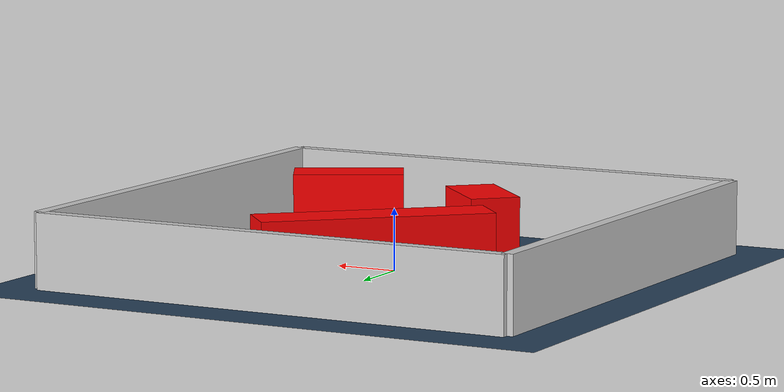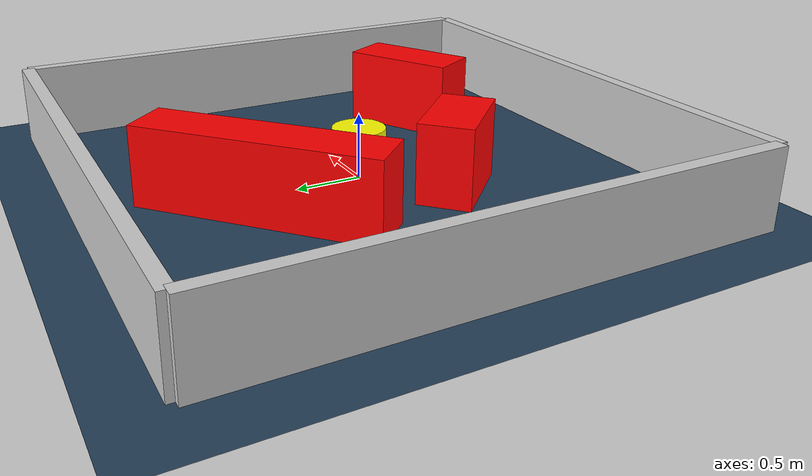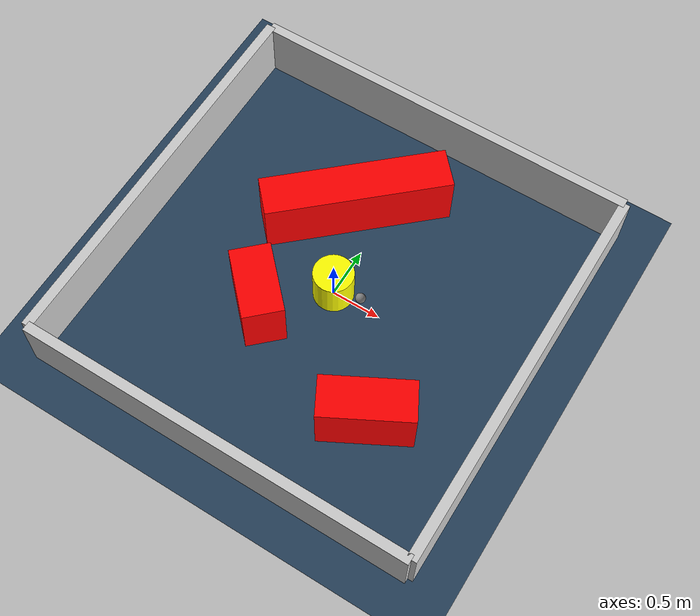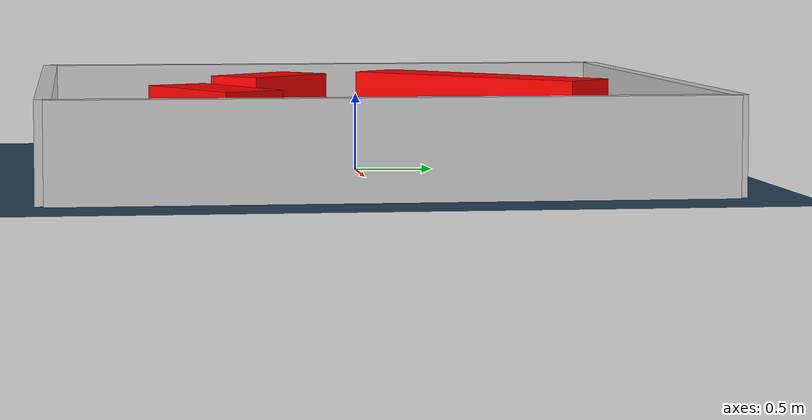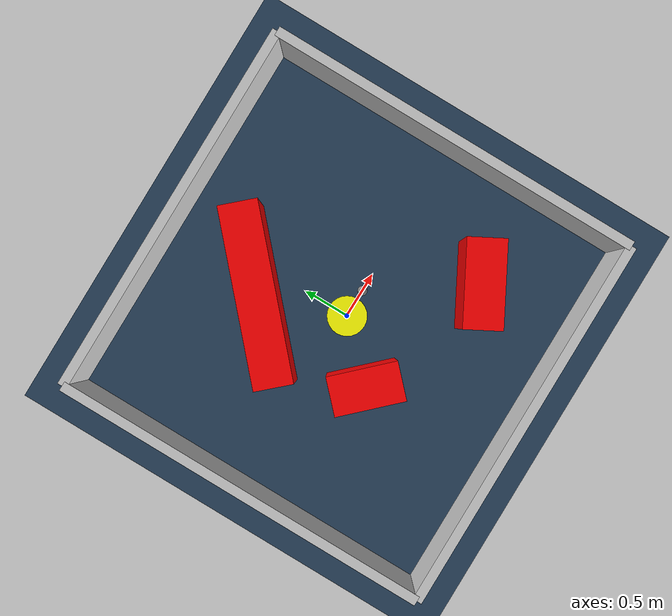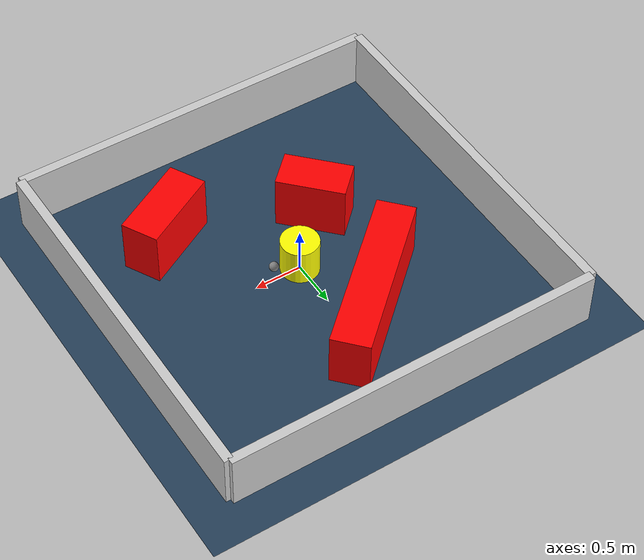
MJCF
<?xml version="1.0" ?>
<mujoco model="generated_environment">
  <option timestep="0.01" integrator="RK4" cone="elliptic"/>
  <default>
    <geom density="1"/>
  </default>
  <asset>
    <texture builtin="gradient" height="3072" rgb1="0.3 0.5 0.7" rgb2="0 0 0" type="skybox" width="512"/>
    <texture builtin="checker" height="300" mark="edge" markrgb="0.8 0.8 0.8" name="groundplane" rgb1="0.2 0.3 0.4" rgb2="0.1 0.2 0.3" type="2d" width="300"/>
    <material name="groundplane" reflectance="0.2" texrepeat="5 5" texture="groundplane" texuniform="true"/>
    <material name="robot" rgba="0.0 1.0 0.0 1"/>
  </asset>
  <worldbody>
    <light dir="0 0 -1" directional="true" pos="0 0 1.5"/>
    <geom condim="4" friction="1.0 0.005 0.001" material="groundplane" name="floor" size="0 0 0.05" type="plane"/>
    <body name="walls">
      <geom name="wall_1" condim="4" pos="-2.0 0.0 0.3" rgba="0.800000011920929 0.800000011920929 0.800000011920929 1.0" size="0.05 2.0 0.3" type="box"/>
      <geom name="wall_2" condim="4" pos="2.0 0.0 0.3" rgba="0.800000011920929 0.800000011920929 0.800000011920929 1.0" size="0.05 2.0 0.3" type="box"/>
      <geom name="wall_3" condim="4" pos="0.0 -2.0 0.3" rgba="0.800000011920929 0.800000011920929 0.800000011920929 1.0" size="2.0 0.05 0.3" type="box"/>
      <geom name="wall_4" condim="4" pos="0.0 2.0 0.3" rgba="0.800000011920929 0.800000011920929 0.800000011920929 1.0" size="2.0 0.05 0.3" type="box"/>
    </body>
    <body name="robot">
      <joint name="joint_x" type="slide" pos="0 0 0" axis="1 0 0"/>
      <joint name="joint_y" type="slide" pos="0 0 0" axis="0 1 0"/>
      <geom name="robot" type="sphere" pos="0.3 0.0 0.2" size="0.05" mass="5." friction="1.0 0.005 0.0001" condim="4" rgba="0.5 0.5 0.5 1.0"/>
      <site name="sensor_ball"/>
    </body>
    <body name="obstacle_movable_1">
      <geom name="obstacle_movable_1" condim="4" pos="0.0 0.0 0.2" euler="0 0 0.0" friction="1.0 0.005 0.001" rgba="1.0 1.0 0.0 1.0" size="0.2 0.2 0.0" type="cylinder" mass="0.1"/>
      <joint type="free"/>
    </body>
    <body name="obstacle_2_static">
      <geom name="obstacle_2_static" condim="4" pos="0.956265218967238 -0.978885799308076 0.3" euler="0 0 28.33542936209785" friction="1.0 0.005 0.001" rgba="1 0 0 1" size="0.4485686478617408 0.2 0.3" type="box"/>
    </body>
    <body name="obstacle_3_static">
      <geom name="obstacle_3_static" condim="4" pos="-0.2847721464526124 0.8624468731951451 0.3" euler="0 0 222.25507347484398" friction="1.0 0.005 0.001" rgba="1 0 0 1" size="0.9148968563863644 0.2 0.3" type="box"/>
    </body>
    <body name="obstacle_4_static">
      <geom name="obstacle_4_static" condim="4" pos="-0.5058451439930087 -0.5227296443672962 0.3" euler="0 0 313.84308965095573" friction="1.0 0.005 0.001" rgba="1 0 0 1" size="0.35725693808722647 0.2 0.3" type="box"/>
    </body>
  </worldbody>
  <actuator>
    <motor name="actuator_x" joint="joint_x" gear="1" ctrlrange="-1 1"/>
    <motor name="actuator_y" joint="joint_y" gear="1" ctrlrange="-1 1"/>
  </actuator>
</mujoco>
